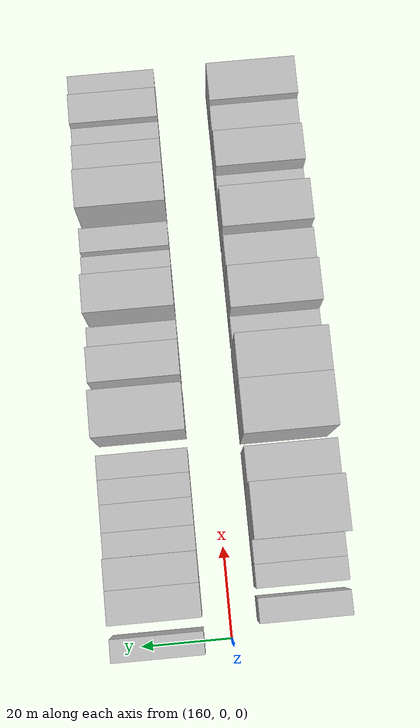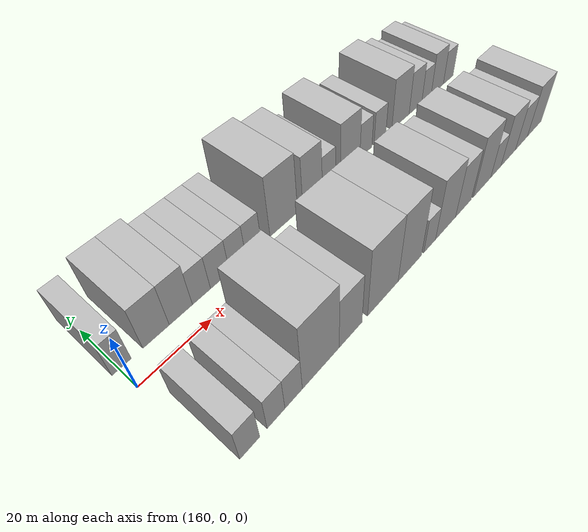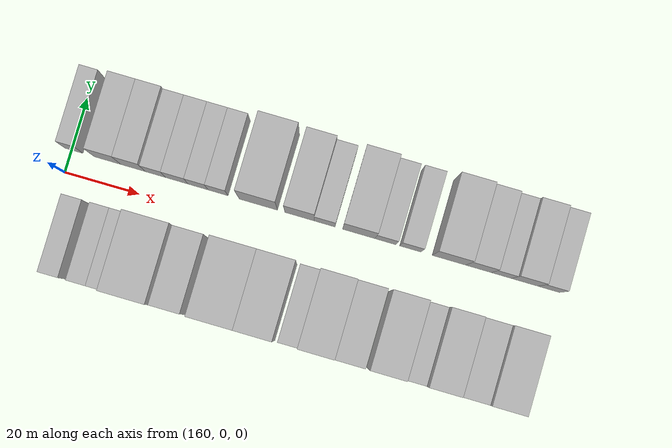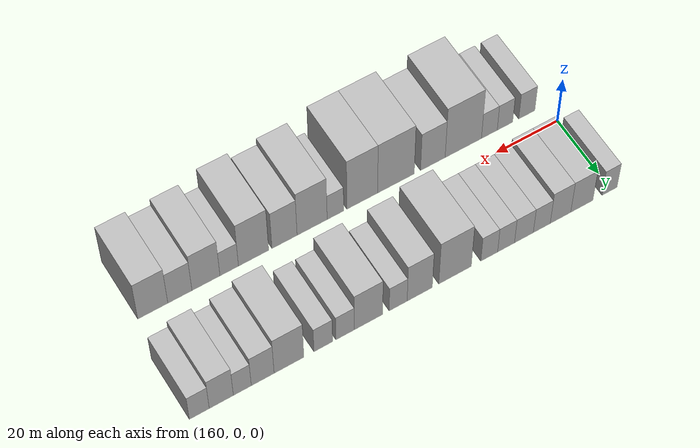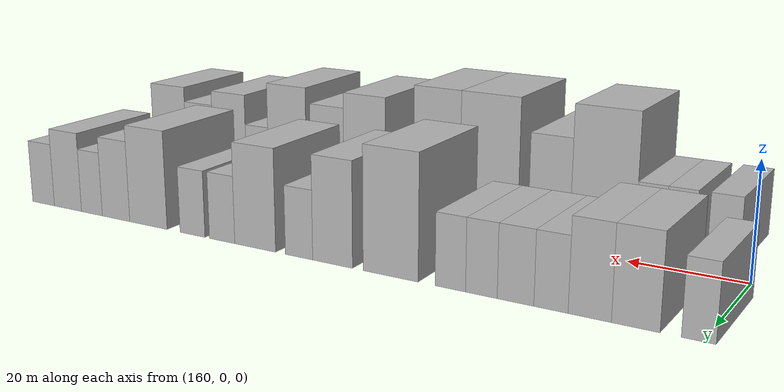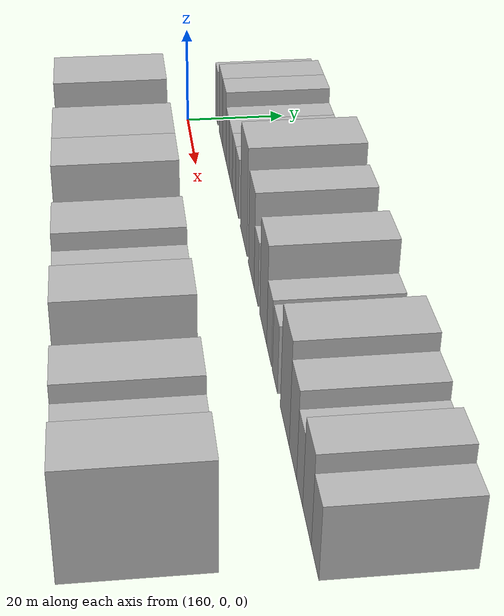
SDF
<sdf version="1.6">
 <world name="default">
  <model name="building_16">
   <static>1</static>
   <pose>160.6476 16.0000 0 0.000000 0.000000 1.570796</pose>
   <link name="link">
    <pose>0 0 6.00 0 0 0</pose>
    <collision name="collision"><geometry><box><size>20.0000 4.8679 12.0000</size></box></geometry></collision>
    <visual name="visual">
     <cast_shadows>0</cast_shadows>
     <geometry><box><size>20.0000 4.8679 12.0000</size></box></geometry>
     <material>
      <script>
       <uri>model://HANNAS_wall/materials/scripts</uri>
       <uri>model://HANNAS_wall/materials/textures</uri>
       <name>vrc/HANNAS_wall</name>
      </script>
     </material>
    </visual>
   </link>
  </model>
  <model name="building_17">
   <static>1</static>
   <pose>169.6573 16.0000 0 0.000000 0.000000 1.570796</pose>
   <link name="link">
    <pose>0 0 7.50 0 0 0</pose>
    <collision name="collision"><geometry><box><size>20.0000 7.1515 15.0000</size></box></geometry></collision>
    <visual name="visual">
     <cast_shadows>0</cast_shadows>
     <geometry><box><size>20.0000 7.1515 15.0000</size></box></geometry>
     <material>
      <script>
       <uri>model://HANNAS_wall/materials/scripts</uri>
       <uri>model://HANNAS_wall/materials/textures</uri>
       <name>vrc/HANNAS_wall</name>
      </script>
     </material>
    </visual>
   </link>
  </model>
  <model name="building_18">
   <static>1</static>
   <pose>176.5369 16.0000 0 0.000000 0.000000 1.570796</pose>
   <link name="link">
    <pose>0 0 7.50 0 0 0</pose>
    <collision name="collision"><geometry><box><size>20.0000 6.6078 15.0000</size></box></geometry></collision>
    <visual name="visual">
     <cast_shadows>0</cast_shadows>
     <geometry><box><size>20.0000 6.6078 15.0000</size></box></geometry>
     <material>
      <script>
       <uri>model://HANNAS_wall/materials/scripts</uri>
       <uri>model://HANNAS_wall/materials/textures</uri>
       <name>vrc/HANNAS_wall</name>
      </script>
     </material>
    </visual>
   </link>
  </model>
  <model name="building_19">
   <static>1</static>
   <pose>182.5508 16.0000 0 0.000000 0.000000 1.570796</pose>
   <link name="link">
    <pose>0 0 6.00 0 0 0</pose>
    <collision name="collision"><geometry><box><size>20.0000 5.4199 12.0000</size></box></geometry></collision>
    <visual name="visual">
     <cast_shadows>0</cast_shadows>
     <geometry><box><size>20.0000 5.4199 12.0000</size></box></geometry>
     <material>
      <script>
       <uri>model://HANNAS_wall/materials/scripts</uri>
       <uri>model://HANNAS_wall/materials/textures</uri>
       <name>vrc/HANNAS_wall</name>
      </script>
     </material>
    </visual>
   </link>
  </model>
  <model name="building_20">
   <static>1</static>
   <pose>188.2551 16.0000 0 0.000000 0.000000 1.570796</pose>
   <link name="link">
    <pose>0 0 6.00 0 0 0</pose>
    <collision name="collision"><geometry><box><size>20.0000 5.9887 12.0000</size></box></geometry></collision>
    <visual name="visual">
     <cast_shadows>0</cast_shadows>
     <geometry><box><size>20.0000 5.9887 12.0000</size></box></geometry>
     <material>
      <script>
       <uri>model://HANNAS_wall/materials/scripts</uri>
       <uri>model://HANNAS_wall/materials/textures</uri>
       <name>vrc/HANNAS_wall</name>
      </script>
     </material>
    </visual>
   </link>
  </model>
  <model name="building_21">
   <static>1</static>
   <pose>193.9157 16.0000 0 0.000000 0.000000 1.570796</pose>
   <link name="link">
    <pose>0 0 6.00 0 0 0</pose>
    <collision name="collision"><geometry><box><size>20.0000 5.3326 12.0000</size></box></geometry></collision>
    <visual name="visual">
     <cast_shadows>0</cast_shadows>
     <geometry><box><size>20.0000 5.3326 12.0000</size></box></geometry>
     <material>
      <script>
       <uri>model://HANNAS_wall/materials/scripts</uri>
       <uri>model://HANNAS_wall/materials/textures</uri>
       <name>vrc/HANNAS_wall</name>
      </script>
     </material>
    </visual>
   </link>
  </model>
  <model name="building_22">
   <static>1</static>
   <pose>199.2230 16.0000 0 0.000000 0.000000 1.570796</pose>
   <link name="link">
    <pose>0 0 6.00 0 0 0</pose>
    <collision name="collision"><geometry><box><size>20.0000 5.2819 12.0000</size></box></geometry></collision>
    <visual name="visual">
     <cast_shadows>0</cast_shadows>
     <geometry><box><size>20.0000 5.2819 12.0000</size></box></geometry>
     <material>
      <script>
       <uri>model://HANNAS_wall/materials/scripts</uri>
       <uri>model://HANNAS_wall/materials/textures</uri>
       <name>vrc/HANNAS_wall</name>
      </script>
     </material>
    </visual>
   </link>
  </model>
  <model name="building_23">
   <static>1</static>
   <pose>209.9373 16.0000 0 0.000000 0.000000 1.570796</pose>
   <link name="link">
    <pose>0 0 10.50 0 0 0</pose>
    <collision name="collision"><geometry><box><size>20.0000 10.1466 21.0000</size></box></geometry></collision>
    <visual name="visual">
     <cast_shadows>0</cast_shadows>
     <geometry><box><size>20.0000 10.1466 21.0000</size></box></geometry>
     <material>
      <script>
       <uri>model://HANNAS_wall/materials/scripts</uri>
       <uri>model://HANNAS_wall/materials/textures</uri>
       <name>vrc/HANNAS_wall</name>
      </script>
     </material>
    </visual>
   </link>
  </model>
  <model name="building_24">
   <static>1</static>
   <pose>220.8997 16.0000 0 0.000000 0.000000 1.570796</pose>
   <link name="link">
    <pose>0 0 9.00 0 0 0</pose>
    <collision name="collision"><geometry><box><size>20.0000 7.7781 18.0000</size></box></geometry></collision>
    <visual name="visual">
     <cast_shadows>0</cast_shadows>
     <geometry><box><size>20.0000 7.7781 18.0000</size></box></geometry>
     <material>
      <script>
       <uri>model://HANNAS_wall/materials/scripts</uri>
       <uri>model://HANNAS_wall/materials/textures</uri>
       <name>vrc/HANNAS_wall</name>
      </script>
     </material>
    </visual>
   </link>
  </model>
  <model name="building_25">
   <static>1</static>
   <pose>227.5422 16.0000 0 0.000000 0.000000 1.570796</pose>
   <link name="link">
    <pose>0 0 6.00 0 0 0</pose>
    <collision name="collision"><geometry><box><size>20.0000 5.5069 12.0000</size></box></geometry></collision>
    <visual name="visual">
     <cast_shadows>0</cast_shadows>
     <geometry><box><size>20.0000 5.5069 12.0000</size></box></geometry>
     <material>
      <script>
       <uri>model://HANNAS_wall/materials/scripts</uri>
       <uri>model://HANNAS_wall/materials/textures</uri>
       <name>vrc/HANNAS_wall</name>
      </script>
     </material>
    </visual>
   </link>
  </model>
  <model name="building_26">
   <static>1</static>
   <pose>236.6096 16.0000 0 0.000000 0.000000 1.570796</pose>
   <link name="link">
    <pose>0 0 9.00 0 0 0</pose>
    <collision name="collision"><geometry><box><size>20.0000 8.6280 18.0000</size></box></geometry></collision>
    <visual name="visual">
     <cast_shadows>0</cast_shadows>
     <geometry><box><size>20.0000 8.6280 18.0000</size></box></geometry>
     <material>
      <script>
       <uri>model://HANNAS_wall/materials/scripts</uri>
       <uri>model://HANNAS_wall/materials/textures</uri>
       <name>vrc/HANNAS_wall</name>
      </script>
     </material>
    </visual>
   </link>
  </model>
  <model name="building_27">
   <static>1</static>
   <pose>243.6946 16.0000 0 0.000000 0.000000 1.570796</pose>
   <link name="link">
    <pose>0 0 6.00 0 0 0</pose>
    <collision name="collision"><geometry><box><size>20.0000 5.5418 12.0000</size></box></geometry></collision>
    <visual name="visual">
     <cast_shadows>0</cast_shadows>
     <geometry><box><size>20.0000 5.5418 12.0000</size></box></geometry>
     <material>
      <script>
       <uri>model://HANNAS_wall/materials/scripts</uri>
       <uri>model://HANNAS_wall/materials/textures</uri>
       <name>vrc/HANNAS_wall</name>
      </script>
     </material>
    </visual>
   </link>
  </model>
  <model name="building_28">
   <static>1</static>
   <pose>250.2726 16.0000 0 0.000000 0.000000 1.570796</pose>
   <link name="link">
    <pose>0 0 6.00 0 0 0</pose>
    <collision name="collision"><geometry><box><size>20.0000 5.6143 12.0000</size></box></geometry></collision>
    <visual name="visual">
     <cast_shadows>0</cast_shadows>
     <geometry><box><size>20.0000 5.6143 12.0000</size></box></geometry>
     <material>
      <script>
       <uri>model://HANNAS_wall/materials/scripts</uri>
       <uri>model://HANNAS_wall/materials/textures</uri>
       <name>vrc/HANNAS_wall</name>
      </script>
     </material>
    </visual>
   </link>
  </model>
  <model name="building_29">
   <static>1</static>
   <pose>260.5104 16.0000 0 0.000000 0.000000 1.570796</pose>
   <link name="link">
    <pose>0 0 9.00 0 0 0</pose>
    <collision name="collision"><geometry><box><size>20.0000 8.8612 18.0000</size></box></geometry></collision>
    <visual name="visual">
     <cast_shadows>0</cast_shadows>
     <geometry><box><size>20.0000 8.8612 18.0000</size></box></geometry>
     <material>
      <script>
       <uri>model://HANNAS_wall/materials/scripts</uri>
       <uri>model://HANNAS_wall/materials/textures</uri>
       <name>vrc/HANNAS_wall</name>
      </script>
     </material>
    </visual>
   </link>
  </model>
  <model name="building_30">
   <static>1</static>
   <pose>268.3135 16.0000 0 0.000000 0.000000 1.570796</pose>
   <link name="link">
    <pose>0 0 7.50 0 0 0</pose>
    <collision name="collision"><geometry><box><size>20.0000 6.7450 15.0000</size></box></geometry></collision>
    <visual name="visual">
     <cast_shadows>0</cast_shadows>
     <geometry><box><size>20.0000 6.7450 15.0000</size></box></geometry>
     <material>
      <script>
       <uri>model://HANNAS_wall/materials/scripts</uri>
       <uri>model://HANNAS_wall/materials/textures</uri>
       <name>vrc/HANNAS_wall</name>
      </script>
     </material>
    </visual>
   </link>
  </model>
  <model name="building_31">
   <static>1</static>
   <pose>274.3185 16.0000 0 0.000000 0.000000 1.570796</pose>
   <link name="link">
    <pose>0 0 6.00 0 0 0</pose>
    <collision name="collision"><geometry><box><size>20.0000 5.2650 12.0000</size></box></geometry></collision>
    <visual name="visual">
     <cast_shadows>0</cast_shadows>
     <geometry><box><size>20.0000 5.2650 12.0000</size></box></geometry>
     <material>
      <script>
       <uri>model://HANNAS_wall/materials/scripts</uri>
       <uri>model://HANNAS_wall/materials/textures</uri>
       <name>vrc/HANNAS_wall</name>
      </script>
     </material>
    </visual>
   </link>
  </model>
  <model name="building_32">
   <static>1</static>
   <pose>280.4677 16.0000 0 0.000000 0.000000 1.570796</pose>
   <link name="link">
    <pose>0 0 7.50 0 0 0</pose>
    <collision name="collision"><geometry><box><size>20.0000 7.0334 15.0000</size></box></geometry></collision>
    <visual name="visual">
     <cast_shadows>0</cast_shadows>
     <geometry><box><size>20.0000 7.0334 15.0000</size></box></geometry>
     <material>
      <script>
       <uri>model://HANNAS_wall/materials/scripts</uri>
       <uri>model://HANNAS_wall/materials/textures</uri>
       <name>vrc/HANNAS_wall</name>
      </script>
     </material>
    </visual>
   </link>
  </model>
  <model name="building_33">
   <static>1</static>
   <pose>286.8735 16.0000 0 0.000000 0.000000 1.570796</pose>
   <link name="link">
    <pose>0 0 6.00 0 0 0</pose>
    <collision name="collision"><geometry><box><size>20.0000 5.7783 12.0000</size></box></geometry></collision>
    <visual name="visual">
     <cast_shadows>0</cast_shadows>
     <geometry><box><size>20.0000 5.7783 12.0000</size></box></geometry>
     <material>
      <script>
       <uri>model://HANNAS_wall/materials/scripts</uri>
       <uri>model://HANNAS_wall/materials/textures</uri>
       <name>vrc/HANNAS_wall</name>
      </script>
     </material>
    </visual>
   </link>
  </model>
  <model name="building_50">
   <static>1</static>
   <pose>166.0678 -16.0000 0 0.000000 0.000000 1.570796</pose>
   <link name="link">
    <pose>0 0 6.00 0 0 0</pose>
    <collision name="collision"><geometry><box><size>20.0000 5.2921 12.0000</size></box></geometry></collision>
    <visual name="visual">
     <cast_shadows>0</cast_shadows>
     <geometry><box><size>20.0000 5.2921 12.0000</size></box></geometry>
     <material>
      <script>
       <uri>model://HANNAS_wall/materials/scripts</uri>
       <uri>model://HANNAS_wall/materials/textures</uri>
       <name>vrc/HANNAS_wall</name>
      </script>
     </material>
    </visual>
   </link>
  </model>
  <model name="building_51">
   <static>1</static>
   <pose>173.2353 -16.0000 0 0.000000 0.000000 1.570796</pose>
   <link name="link">
    <pose>0 0 6.00 0 0 0</pose>
    <collision name="collision"><geometry><box><size>20.0000 5.0428 12.0000</size></box></geometry></collision>
    <visual name="visual">
     <cast_shadows>0</cast_shadows>
     <geometry><box><size>20.0000 5.0428 12.0000</size></box></geometry>
     <material>
      <script>
       <uri>model://HANNAS_wall/materials/scripts</uri>
       <uri>model://HANNAS_wall/materials/textures</uri>
       <name>vrc/HANNAS_wall</name>
      </script>
     </material>
    </visual>
   </link>
  </model>
  <model name="building_52">
   <static>1</static>
   <pose>178.3296 -16.0000 0 0.000000 0.000000 1.570796</pose>
   <link name="link">
    <pose>0 0 6.00 0 0 0</pose>
    <collision name="collision"><geometry><box><size>20.0000 5.1458 12.0000</size></box></geometry></collision>
    <visual name="visual">
     <cast_shadows>0</cast_shadows>
     <geometry><box><size>20.0000 5.1458 12.0000</size></box></geometry>
     <material>
      <script>
       <uri>model://HANNAS_wall/materials/scripts</uri>
       <uri>model://HANNAS_wall/materials/textures</uri>
       <name>vrc/HANNAS_wall</name>
      </script>
     </material>
    </visual>
   </link>
  </model>
  <model name="building_53">
   <static>1</static>
   <pose>186.7663 -16.0000 0 0.000000 0.000000 1.570796</pose>
   <link name="link">
    <pose>0 0 12.00 0 0 0</pose>
    <collision name="collision"><geometry><box><size>20.0000 11.7276 24.0000</size></box></geometry></collision>
    <visual name="visual">
     <cast_shadows>0</cast_shadows>
     <geometry><box><size>20.0000 11.7276 24.0000</size></box></geometry>
     <material>
      <script>
       <uri>model://HANNAS_wall/materials/scripts</uri>
       <uri>model://HANNAS_wall/materials/textures</uri>
       <name>vrc/HANNAS_wall</name>
      </script>
     </material>
    </visual>
   </link>
  </model>
  <model name="building_54">
   <static>1</static>
   <pose>196.5714 -16.0000 0 0.000000 0.000000 1.570796</pose>
   <link name="link">
    <pose>0 0 9.00 0 0 0</pose>
    <collision name="collision"><geometry><box><size>20.0000 7.8826 18.0000</size></box></geometry></collision>
    <visual name="visual">
     <cast_shadows>0</cast_shadows>
     <geometry><box><size>20.0000 7.8826 18.0000</size></box></geometry>
     <material>
      <script>
       <uri>model://HANNAS_wall/materials/scripts</uri>
       <uri>model://HANNAS_wall/materials/textures</uri>
       <name>vrc/HANNAS_wall</name>
      </script>
     </material>
    </visual>
   </link>
  </model>
  <model name="building_55">
   <static>1</static>
   <pose>208.3200 -16.0000 0 0.000000 0.000000 1.570796</pose>
   <link name="link">
    <pose>0 0 12.00 0 0 0</pose>
    <collision name="collision"><geometry><box><size>20.0000 11.6145 24.0000</size></box></geometry></collision>
    <visual name="visual">
     <cast_shadows>0</cast_shadows>
     <geometry><box><size>20.0000 11.6145 24.0000</size></box></geometry>
     <material>
      <script>
       <uri>model://HANNAS_wall/materials/scripts</uri>
       <uri>model://HANNAS_wall/materials/textures</uri>
       <name>vrc/HANNAS_wall</name>
      </script>
     </material>
    </visual>
   </link>
  </model>
  <model name="building_56">
   <static>1</static>
   <pose>218.9475 -16.0000 0 0.000000 0.000000 1.570796</pose>
   <link name="link">
    <pose>0 0 12.00 0 0 0</pose>
    <collision name="collision"><geometry><box><size>20.0000 9.6405 24.0000</size></box></geometry></collision>
    <visual name="visual">
     <cast_shadows>0</cast_shadows>
     <geometry><box><size>20.0000 9.6405 24.0000</size></box></geometry>
     <material>
      <script>
       <uri>model://HANNAS_wall/materials/scripts</uri>
       <uri>model://HANNAS_wall/materials/textures</uri>
       <name>vrc/HANNAS_wall</name>
      </script>
     </material>
    </visual>
   </link>
  </model>
  <model name="building_57">
   <static>1</static>
   <pose>227.3424 -16.0000 0 0.000000 0.000000 1.570796</pose>
   <link name="link">
    <pose>0 0 6.00 0 0 0</pose>
    <collision name="collision"><geometry><box><size>20.0000 5.1493 12.0000</size></box></geometry></collision>
    <visual name="visual">
     <cast_shadows>0</cast_shadows>
     <geometry><box><size>20.0000 5.1493 12.0000</size></box></geometry>
     <material>
      <script>
       <uri>model://HANNAS_wall/materials/scripts</uri>
       <uri>model://HANNAS_wall/materials/textures</uri>
       <name>vrc/HANNAS_wall</name>
      </script>
     </material>
    </visual>
   </link>
  </model>
  <model name="building_58">
   <static>1</static>
   <pose>234.5735 -16.0000 0 0.000000 0.000000 1.570796</pose>
   <link name="link">
    <pose>0 0 10.50 0 0 0</pose>
    <collision name="collision"><geometry><box><size>20.0000 9.3128 21.0000</size></box></geometry></collision>
    <visual name="visual">
     <cast_shadows>0</cast_shadows>
     <geometry><box><size>20.0000 9.3128 21.0000</size></box></geometry>
     <material>
      <script>
       <uri>model://HANNAS_wall/materials/scripts</uri>
       <uri>model://HANNAS_wall/materials/textures</uri>
       <name>vrc/HANNAS_wall</name>
      </script>
     </material>
    </visual>
   </link>
  </model>
  <model name="building_59">
   <static>1</static>
   <pose>243.0842 -16.0000 0 0.000000 0.000000 1.570796</pose>
   <link name="link">
    <pose>0 0 9.00 0 0 0</pose>
    <collision name="collision"><geometry><box><size>20.0000 7.7087 18.0000</size></box></geometry></collision>
    <visual name="visual">
     <cast_shadows>0</cast_shadows>
     <geometry><box><size>20.0000 7.7087 18.0000</size></box></geometry>
     <material>
      <script>
       <uri>model://HANNAS_wall/materials/scripts</uri>
       <uri>model://HANNAS_wall/materials/textures</uri>
       <name>vrc/HANNAS_wall</name>
      </script>
     </material>
    </visual>
   </link>
  </model>
  <model name="building_60">
   <static>1</static>
   <pose>252.5407 -16.0000 0 0.000000 0.000000 1.570796</pose>
   <link name="link">
    <pose>0 0 10.50 0 0 0</pose>
    <collision name="collision"><geometry><box><size>20.0000 9.2043 21.0000</size></box></geometry></collision>
    <visual name="visual">
     <cast_shadows>0</cast_shadows>
     <geometry><box><size>20.0000 9.2043 21.0000</size></box></geometry>
     <material>
      <script>
       <uri>model://HANNAS_wall/materials/scripts</uri>
       <uri>model://HANNAS_wall/materials/textures</uri>
       <name>vrc/HANNAS_wall</name>
      </script>
     </material>
    </visual>
   </link>
  </model>
  <model name="building_61">
   <static>1</static>
   <pose>259.9438 -16.0000 0 0.000000 0.000000 1.570796</pose>
   <link name="link">
    <pose>0 0 6.00 0 0 0</pose>
    <collision name="collision"><geometry><box><size>20.0000 5.6019 12.0000</size></box></geometry></collision>
    <visual name="visual">
     <cast_shadows>0</cast_shadows>
     <geometry><box><size>20.0000 5.6019 12.0000</size></box></geometry>
     <material>
      <script>
       <uri>model://HANNAS_wall/materials/scripts</uri>
       <uri>model://HANNAS_wall/materials/textures</uri>
       <name>vrc/HANNAS_wall</name>
      </script>
     </material>
    </visual>
   </link>
  </model>
  <model name="building_62">
   <static>1</static>
   <pose>266.9490 -16.0000 0 0.000000 0.000000 1.570796</pose>
   <link name="link">
    <pose>0 0 9.00 0 0 0</pose>
    <collision name="collision"><geometry><box><size>20.0000 8.4085 18.0000</size></box></geometry></collision>
    <visual name="visual">
     <cast_shadows>0</cast_shadows>
     <geometry><box><size>20.0000 8.4085 18.0000</size></box></geometry>
     <material>
      <script>
       <uri>model://HANNAS_wall/materials/scripts</uri>
       <uri>model://HANNAS_wall/materials/textures</uri>
       <name>vrc/HANNAS_wall</name>
      </script>
     </material>
    </visual>
   </link>
  </model>
  <model name="building_63">
   <static>1</static>
   <pose>274.7577 -16.0000 0 0.000000 0.000000 1.570796</pose>
   <link name="link">
    <pose>0 0 7.50 0 0 0</pose>
    <collision name="collision"><geometry><box><size>20.0000 7.2088 15.0000</size></box></geometry></collision>
    <visual name="visual">
     <cast_shadows>0</cast_shadows>
     <geometry><box><size>20.0000 7.2088 15.0000</size></box></geometry>
     <material>
      <script>
       <uri>model://HANNAS_wall/materials/scripts</uri>
       <uri>model://HANNAS_wall/materials/textures</uri>
       <name>vrc/HANNAS_wall</name>
      </script>
     </material>
    </visual>
   </link>
  </model>
  <model name="building_64">
   <static>1</static>
   <pose>282.8158 -16.0000 0 0.000000 0.000000 1.570796</pose>
   <link name="link">
    <pose>0 0 9.00 0 0 0</pose>
    <collision name="collision"><geometry><box><size>20.0000 8.9074 18.0000</size></box></geometry></collision>
    <visual name="visual">
     <cast_shadows>0</cast_shadows>
     <geometry><box><size>20.0000 8.9074 18.0000</size></box></geometry>
     <material>
      <script>
       <uri>model://HANNAS_wall/materials/scripts</uri>
       <uri>model://HANNAS_wall/materials/textures</uri>
       <name>vrc/HANNAS_wall</name>
      </script>
     </material>
    </visual>
   </link>
  </model>
 </world>
</sdf>
